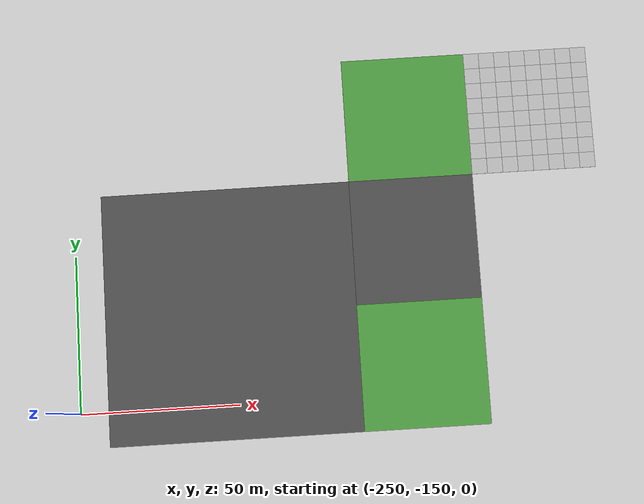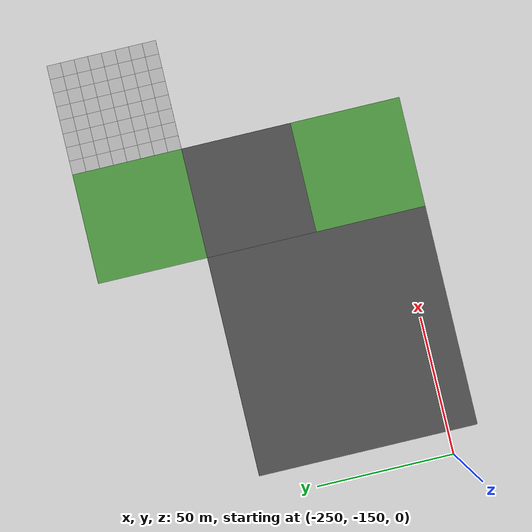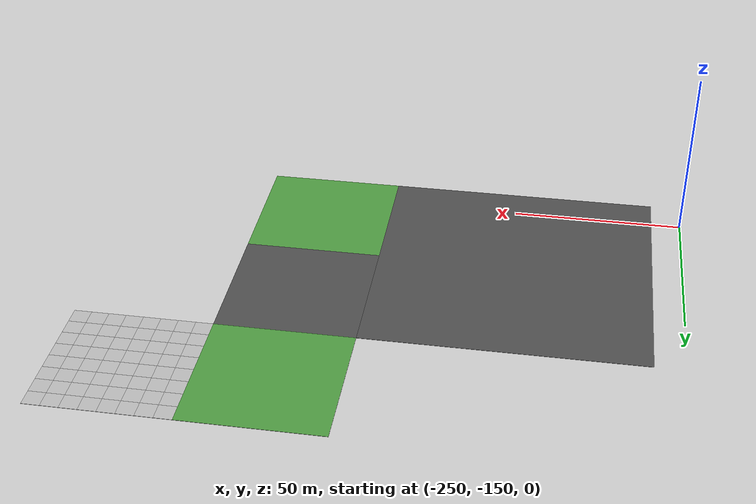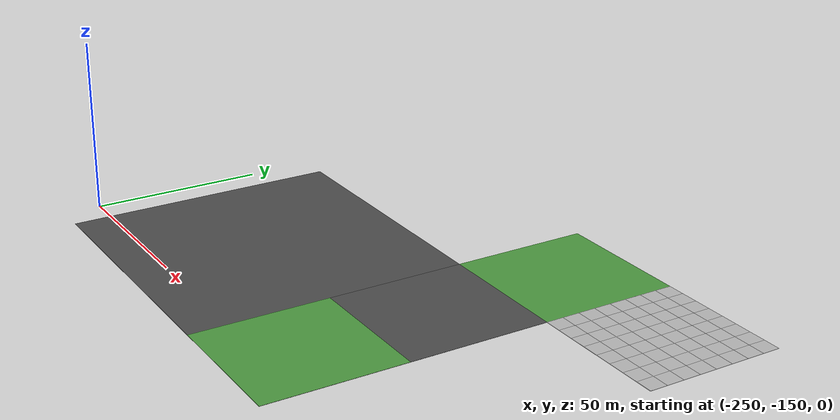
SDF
<sdf version="1.7">
 <world name="default">
  <model name="asphalt_plane_40x40_0">
   <pose>-201.419 -120.749 -0.05 0 -0 0</pose>
   <static>1</static>
   <link name="link">
    <collision name="collision"><geometry><box><size>80 80 0.1</size></box></geometry></collision>
    <visual name="visual">
     <cast_shadows>0</cast_shadows>
     <geometry><box><size>80 80 0.1</size></box></geometry>
     <material>
      <script>
       <uri>model://asphalt_plane_40x40/materials/scripts</uri>
       <uri>model://asphalt_plane_40x40/materials/textures</uri>
       <name>vrc/asphalt</name>
      </script>
     </material>
    </visual>
   </link>
  </model>
  <model name="asphalt_plane_40x40_1">
   <pose>-141.422 -100.751 -0.05 0 -0 0</pose>
   <static>1</static>
   <link name="link">
    <collision name="collision"><geometry><box><size>40 40 0.1</size></box></geometry></collision>
    <visual name="visual">
     <cast_shadows>0</cast_shadows>
     <geometry><box><size>40 40 0.1</size></box></geometry>
     <material>
      <script>
       <uri>model://asphalt_plane_40x40/materials/scripts</uri>
       <uri>model://asphalt_plane_40x40/materials/textures</uri>
       <name>vrc/asphalt</name>
      </script>
     </material>
    </visual>
   </link>
  </model>
  <model name="grass_plane_40x40_8">
   <pose>-141.42 -140.749 -0.05 0 -0 0</pose>
   <static>1</static>
   <link name="link">
    <collision name="collision"><geometry><box><size>40 40 0.1</size></box></geometry></collision>
    <visual name="grass">
     <cast_shadows>0</cast_shadows>
     <geometry><box><size>40 40 0.1</size></box></geometry>
     <material>
      <script><uri>file://media/materials/scripts/gazebo.material</uri><name>Gazebo/Grass</name></script>
     </material>
    </visual>
   </link>
  </model>
  <model name="grass_plane_40x40_12">
   <pose>-141.422 -60.7516 -0.05 0 -0 0</pose>
   <static>1</static>
   <link name="link">
    <collision name="collision"><geometry><box><size>40 40 0.1</size></box></geometry></collision>
    <visual name="grass">
     <cast_shadows>0</cast_shadows>
     <geometry><box><size>40 40 0.1</size></box></geometry>
     <material>
      <script><uri>file://media/materials/scripts/gazebo.material</uri><name>Gazebo/Grass</name></script>
     </material>
    </visual>
   </link>
  </model>
  <model name="mud_plane_40x40_7">
   <model name="mud_plane_20x20">
    <model name="mud_plane">
     <static>1</static>
     <link name="link">
      <collision name="collision"><geometry><box><size>10 10 0.1</size></box></geometry></collision>
      <visual name="visual_1">
       <pose>-2.5 2.5 -0.05 0 -0 0</pose>
       <cast_shadows>0</cast_shadows>
       <geometry><box><size>5 5 0.1</size></box></geometry>
       <material>
        <script>
         <uri>model://mud_plane/materials/scripts</uri>
         <uri>model://mud_plane/materials/textures</uri>
         <name>vrc/mud</name>
        </script>
       </material>
      </visual>
      <visual name="visual_2">
       <pose>2.5 2.5 -0.05 0 -0 0</pose>
       <cast_shadows>0</cast_shadows>
       <geometry><box><size>5 5 0.1</size></box></geometry>
       <material>
        <script>
         <uri>model://mud_plane/materials/scripts</uri>
         <uri>model://mud_plane/materials/textures</uri>
         <name>vrc/mud</name>
        </script>
       </material>
      </visual>
      <visual name="visual_3">
       <pose>2.5 -2.5 -0.05 0 -0 0</pose>
       <cast_shadows>0</cast_shadows>
       <geometry><box><size>5 5 0.1</size></box></geometry>
       <material>
        <script>
         <uri>model://mud_plane/materials/scripts</uri>
         <uri>model://mud_plane/materials/textures</uri>
         <name>vrc/mud</name>
        </script>
       </material>
      </visual>
      <visual name="visual_4">
       <pose>-2.5 -2.5 -0.05 0 -0 0</pose>
       <cast_shadows>0</cast_shadows>
       <geometry><box><size>5 5 0.1</size></box></geometry>
       <material>
        <script>
         <uri>model://mud_plane/materials/scripts</uri>
         <uri>model://mud_plane/materials/textures</uri>
         <name>vrc/mud</name>
        </script>
       </material>
      </visual>
     </link>
     <pose>-4.99986 -4.99991 0 0 -0 0</pose>
    </model>
    <model name="mud_plane_0">
     <static>1</static>
     <link name="link">
      <collision name="collision"><geometry><box><size>10 10 0.1</size></box></geometry></collision>
      <visual name="visual_1">
       <pose>-2.5 2.5 -0.05 0 -0 0</pose>
       <cast_shadows>0</cast_shadows>
       <geometry><box><size>5 5 0.1</size></box></geometry>
       <material>
        <script>
         <uri>model://mud_plane/materials/scripts</uri>
         <uri>model://mud_plane/materials/textures</uri>
         <name>vrc/mud</name>
        </script>
       </material>
      </visual>
      <visual name="visual_2">
       <pose>2.5 2.5 -0.05 0 -0 0</pose>
       <cast_shadows>0</cast_shadows>
       <geometry><box><size>5 5 0.1</size></box></geometry>
       <material>
        <script>
         <uri>model://mud_plane/materials/scripts</uri>
         <uri>model://mud_plane/materials/textures</uri>
         <name>vrc/mud</name>
        </script>
       </material>
      </visual>
      <visual name="visual_3">
       <pose>2.5 -2.5 -0.05 0 -0 0</pose>
       <cast_shadows>0</cast_shadows>
       <geometry><box><size>5 5 0.1</size></box></geometry>
       <material>
        <script>
         <uri>model://mud_plane/materials/scripts</uri>
         <uri>model://mud_plane/materials/textures</uri>
         <name>vrc/mud</name>
        </script>
       </material>
      </visual>
      <visual name="visual_4">
       <pose>-2.5 -2.5 -0.05 0 -0 0</pose>
       <cast_shadows>0</cast_shadows>
       <geometry><box><size>5 5 0.1</size></box></geometry>
       <material>
        <script>
         <uri>model://mud_plane/materials/scripts</uri>
         <uri>model://mud_plane/materials/textures</uri>
         <name>vrc/mud</name>
        </script>
       </material>
      </visual>
     </link>
     <pose>-4.99946 4.99954 0 0 -0 0</pose>
    </model>
    <model name="mud_plane_1">
     <static>1</static>
     <link name="link">
      <collision name="collision"><geometry><box><size>10 10 0.1</size></box></geometry></collision>
      <visual name="visual_1">
       <pose>-2.5 2.5 -0.05 0 -0 0</pose>
       <cast_shadows>0</cast_shadows>
       <geometry><box><size>5 5 0.1</size></box></geometry>
       <material>
        <script>
         <uri>model://mud_plane/materials/scripts</uri>
         <uri>model://mud_plane/materials/textures</uri>
         <name>vrc/mud</name>
        </script>
       </material>
      </visual>
      <visual name="visual_2">
       <pose>2.5 2.5 -0.05 0 -0 0</pose>
       <cast_shadows>0</cast_shadows>
       <geometry><box><size>5 5 0.1</size></box></geometry>
       <material>
        <script>
         <uri>model://mud_plane/materials/scripts</uri>
         <uri>model://mud_plane/materials/textures</uri>
         <name>vrc/mud</name>
        </script>
       </material>
      </visual>
      <visual name="visual_3">
       <pose>2.5 -2.5 -0.05 0 -0 0</pose>
       <cast_shadows>0</cast_shadows>
       <geometry><box><size>5 5 0.1</size></box></geometry>
       <material>
        <script>
         <uri>model://mud_plane/materials/scripts</uri>
         <uri>model://mud_plane/materials/textures</uri>
         <name>vrc/mud</name>
        </script>
       </material>
      </visual>
      <visual name="visual_4">
       <pose>-2.5 -2.5 -0.05 0 -0 0</pose>
       <cast_shadows>0</cast_shadows>
       <geometry><box><size>5 5 0.1</size></box></geometry>
       <material>
        <script>
         <uri>model://mud_plane/materials/scripts</uri>
         <uri>model://mud_plane/materials/textures</uri>
         <name>vrc/mud</name>
        </script>
       </material>
      </visual>
     </link>
     <pose>4.99964 -4.99949 0 0 -0 0</pose>
    </model>
    <model name="mud_plane_2">
     <static>1</static>
     <link name="link">
      <collision name="collision"><geometry><box><size>10 10 0.1</size></box></geometry></collision>
      <visual name="visual_1">
       <pose>-2.5 2.5 -0.05 0 -0 0</pose>
       <cast_shadows>0</cast_shadows>
       <geometry><box><size>5 5 0.1</size></box></geometry>
       <material>
        <script>
         <uri>model://mud_plane/materials/scripts</uri>
         <uri>model://mud_plane/materials/textures</uri>
         <name>vrc/mud</name>
        </script>
       </material>
      </visual>
      <visual name="visual_2">
       <pose>2.5 2.5 -0.05 0 -0 0</pose>
       <cast_shadows>0</cast_shadows>
       <geometry><box><size>5 5 0.1</size></box></geometry>
       <material>
        <script>
         <uri>model://mud_plane/materials/scripts</uri>
         <uri>model://mud_plane/materials/textures</uri>
         <name>vrc/mud</name>
        </script>
       </material>
      </visual>
      <visual name="visual_3">
       <pose>2.5 -2.5 -0.05 0 -0 0</pose>
       <cast_shadows>0</cast_shadows>
       <geometry><box><size>5 5 0.1</size></box></geometry>
       <material>
        <script>
         <uri>model://mud_plane/materials/scripts</uri>
         <uri>model://mud_plane/materials/textures</uri>
         <name>vrc/mud</name>
        </script>
       </material>
      </visual>
      <visual name="visual_4">
       <pose>-2.5 -2.5 -0.05 0 -0 0</pose>
       <cast_shadows>0</cast_shadows>
       <geometry><box><size>5 5 0.1</size></box></geometry>
       <material>
        <script>
         <uri>model://mud_plane/materials/scripts</uri>
         <uri>model://mud_plane/materials/textures</uri>
         <name>vrc/mud</name>
        </script>
       </material>
      </visual>
     </link>
     <pose>4.99967 4.99986 0 0 -0 0</pose>
    </model>
    <static>0</static>
    <pose>-9.99895 9.99843 0 0 -0 0</pose>
   </model>
   <model name="mud_plane_20x20_0">
    <model name="mud_plane">
     <static>1</static>
     <link name="link">
      <collision name="collision"><geometry><box><size>10 10 0.1</size></box></geometry></collision>
      <visual name="visual_1">
       <pose>-2.5 2.5 -0.05 0 -0 0</pose>
       <cast_shadows>0</cast_shadows>
       <geometry><box><size>5 5 0.1</size></box></geometry>
       <material>
        <script>
         <uri>model://mud_plane/materials/scripts</uri>
         <uri>model://mud_plane/materials/textures</uri>
         <name>vrc/mud</name>
        </script>
       </material>
      </visual>
      <visual name="visual_2">
       <pose>2.5 2.5 -0.05 0 -0 0</pose>
       <cast_shadows>0</cast_shadows>
       <geometry><box><size>5 5 0.1</size></box></geometry>
       <material>
        <script>
         <uri>model://mud_plane/materials/scripts</uri>
         <uri>model://mud_plane/materials/textures</uri>
         <name>vrc/mud</name>
        </script>
       </material>
      </visual>
      <visual name="visual_3">
       <pose>2.5 -2.5 -0.05 0 -0 0</pose>
       <cast_shadows>0</cast_shadows>
       <geometry><box><size>5 5 0.1</size></box></geometry>
       <material>
        <script>
         <uri>model://mud_plane/materials/scripts</uri>
         <uri>model://mud_plane/materials/textures</uri>
         <name>vrc/mud</name>
        </script>
       </material>
      </visual>
      <visual name="visual_4">
       <pose>-2.5 -2.5 -0.05 0 -0 0</pose>
       <cast_shadows>0</cast_shadows>
       <geometry><box><size>5 5 0.1</size></box></geometry>
       <material>
        <script>
         <uri>model://mud_plane/materials/scripts</uri>
         <uri>model://mud_plane/materials/textures</uri>
         <name>vrc/mud</name>
        </script>
       </material>
      </visual>
     </link>
     <pose>-4.99986 -4.99991 0 0 -0 0</pose>
    </model>
    <model name="mud_plane_0">
     <static>1</static>
     <link name="link">
      <collision name="collision"><geometry><box><size>10 10 0.1</size></box></geometry></collision>
      <visual name="visual_1">
       <pose>-2.5 2.5 -0.05 0 -0 0</pose>
       <cast_shadows>0</cast_shadows>
       <geometry><box><size>5 5 0.1</size></box></geometry>
       <material>
        <script>
         <uri>model://mud_plane/materials/scripts</uri>
         <uri>model://mud_plane/materials/textures</uri>
         <name>vrc/mud</name>
        </script>
       </material>
      </visual>
      <visual name="visual_2">
       <pose>2.5 2.5 -0.05 0 -0 0</pose>
       <cast_shadows>0</cast_shadows>
       <geometry><box><size>5 5 0.1</size></box></geometry>
       <material>
        <script>
         <uri>model://mud_plane/materials/scripts</uri>
         <uri>model://mud_plane/materials/textures</uri>
         <name>vrc/mud</name>
        </script>
       </material>
      </visual>
      <visual name="visual_3">
       <pose>2.5 -2.5 -0.05 0 -0 0</pose>
       <cast_shadows>0</cast_shadows>
       <geometry><box><size>5 5 0.1</size></box></geometry>
       <material>
        <script>
         <uri>model://mud_plane/materials/scripts</uri>
         <uri>model://mud_plane/materials/textures</uri>
         <name>vrc/mud</name>
        </script>
       </material>
      </visual>
      <visual name="visual_4">
       <pose>-2.5 -2.5 -0.05 0 -0 0</pose>
       <cast_shadows>0</cast_shadows>
       <geometry><box><size>5 5 0.1</size></box></geometry>
       <material>
        <script>
         <uri>model://mud_plane/materials/scripts</uri>
         <uri>model://mud_plane/materials/textures</uri>
         <name>vrc/mud</name>
        </script>
       </material>
      </visual>
     </link>
     <pose>-4.99946 4.99954 0 0 -0 0</pose>
    </model>
    <model name="mud_plane_1">
     <static>1</static>
     <link name="link">
      <collision name="collision"><geometry><box><size>10 10 0.1</size></box></geometry></collision>
      <visual name="visual_1">
       <pose>-2.5 2.5 -0.05 0 -0 0</pose>
       <cast_shadows>0</cast_shadows>
       <geometry><box><size>5 5 0.1</size></box></geometry>
       <material>
        <script>
         <uri>model://mud_plane/materials/scripts</uri>
         <uri>model://mud_plane/materials/textures</uri>
         <name>vrc/mud</name>
        </script>
       </material>
      </visual>
      <visual name="visual_2">
       <pose>2.5 2.5 -0.05 0 -0 0</pose>
       <cast_shadows>0</cast_shadows>
       <geometry><box><size>5 5 0.1</size></box></geometry>
       <material>
        <script>
         <uri>model://mud_plane/materials/scripts</uri>
         <uri>model://mud_plane/materials/textures</uri>
         <name>vrc/mud</name>
        </script>
       </material>
      </visual>
      <visual name="visual_3">
       <pose>2.5 -2.5 -0.05 0 -0 0</pose>
       <cast_shadows>0</cast_shadows>
       <geometry><box><size>5 5 0.1</size></box></geometry>
       <material>
        <script>
         <uri>model://mud_plane/materials/scripts</uri>
         <uri>model://mud_plane/materials/textures</uri>
         <name>vrc/mud</name>
        </script>
       </material>
      </visual>
      <visual name="visual_4">
       <pose>-2.5 -2.5 -0.05 0 -0 0</pose>
       <cast_shadows>0</cast_shadows>
       <geometry><box><size>5 5 0.1</size></box></geometry>
       <material>
        <script>
         <uri>model://mud_plane/materials/scripts</uri>
         <uri>model://mud_plane/materials/textures</uri>
         <name>vrc/mud</name>
        </script>
       </material>
      </visual>
     </link>
     <pose>4.99964 -4.99949 0 0 -0 0</pose>
    </model>
    <model name="mud_plane_2">
     <static>1</static>
     <link name="link">
      <collision name="collision"><geometry><box><size>10 10 0.1</size></box></geometry></collision>
      <visual name="visual_1">
       <pose>-2.5 2.5 -0.05 0 -0 0</pose>
       <cast_shadows>0</cast_shadows>
       <geometry><box><size>5 5 0.1</size></box></geometry>
       <material>
        <script>
         <uri>model://mud_plane/materials/scripts</uri>
         <uri>model://mud_plane/materials/textures</uri>
         <name>vrc/mud</name>
        </script>
       </material>
      </visual>
      <visual name="visual_2">
       <pose>2.5 2.5 -0.05 0 -0 0</pose>
       <cast_shadows>0</cast_shadows>
       <geometry><box><size>5 5 0.1</size></box></geometry>
       <material>
        <script>
         <uri>model://mud_plane/materials/scripts</uri>
         <uri>model://mud_plane/materials/textures</uri>
         <name>vrc/mud</name>
        </script>
       </material>
      </visual>
      <visual name="visual_3">
       <pose>2.5 -2.5 -0.05 0 -0 0</pose>
       <cast_shadows>0</cast_shadows>
       <geometry><box><size>5 5 0.1</size></box></geometry>
       <material>
        <script>
         <uri>model://mud_plane/materials/scripts</uri>
         <uri>model://mud_plane/materials/textures</uri>
         <name>vrc/mud</name>
        </script>
       </material>
      </visual>
      <visual name="visual_4">
       <pose>-2.5 -2.5 -0.05 0 -0 0</pose>
       <cast_shadows>0</cast_shadows>
       <geometry><box><size>5 5 0.1</size></box></geometry>
       <material>
        <script>
         <uri>model://mud_plane/materials/scripts</uri>
         <uri>model://mud_plane/materials/textures</uri>
         <name>vrc/mud</name>
        </script>
       </material>
      </visual>
     </link>
     <pose>4.99967 4.99986 0 0 -0 0</pose>
    </model>
    <static>0</static>
    <pose>9.99933 9.9997 0 0 -0 0</pose>
   </model>
   <model name="mud_plane_20x20_1">
    <model name="mud_plane">
     <static>1</static>
     <link name="link">
      <collision name="collision"><geometry><box><size>10 10 0.1</size></box></geometry></collision>
      <visual name="visual_1">
       <pose>-2.5 2.5 -0.05 0 -0 0</pose>
       <cast_shadows>0</cast_shadows>
       <geometry><box><size>5 5 0.1</size></box></geometry>
       <material>
        <script>
         <uri>model://mud_plane/materials/scripts</uri>
         <uri>model://mud_plane/materials/textures</uri>
         <name>vrc/mud</name>
        </script>
       </material>
      </visual>
      <visual name="visual_2">
       <pose>2.5 2.5 -0.05 0 -0 0</pose>
       <cast_shadows>0</cast_shadows>
       <geometry><box><size>5 5 0.1</size></box></geometry>
       <material>
        <script>
         <uri>model://mud_plane/materials/scripts</uri>
         <uri>model://mud_plane/materials/textures</uri>
         <name>vrc/mud</name>
        </script>
       </material>
      </visual>
      <visual name="visual_3">
       <pose>2.5 -2.5 -0.05 0 -0 0</pose>
       <cast_shadows>0</cast_shadows>
       <geometry><box><size>5 5 0.1</size></box></geometry>
       <material>
        <script>
         <uri>model://mud_plane/materials/scripts</uri>
         <uri>model://mud_plane/materials/textures</uri>
         <name>vrc/mud</name>
        </script>
       </material>
      </visual>
      <visual name="visual_4">
       <pose>-2.5 -2.5 -0.05 0 -0 0</pose>
       <cast_shadows>0</cast_shadows>
       <geometry><box><size>5 5 0.1</size></box></geometry>
       <material>
        <script>
         <uri>model://mud_plane/materials/scripts</uri>
         <uri>model://mud_plane/materials/textures</uri>
         <name>vrc/mud</name>
        </script>
       </material>
      </visual>
     </link>
     <pose>-4.99986 -4.99991 0 0 -0 0</pose>
    </model>
    <model name="mud_plane_0">
     <static>1</static>
     <link name="link">
      <collision name="collision"><geometry><box><size>10 10 0.1</size></box></geometry></collision>
      <visual name="visual_1">
       <pose>-2.5 2.5 -0.05 0 -0 0</pose>
       <cast_shadows>0</cast_shadows>
       <geometry><box><size>5 5 0.1</size></box></geometry>
       <material>
        <script>
         <uri>model://mud_plane/materials/scripts</uri>
         <uri>model://mud_plane/materials/textures</uri>
         <name>vrc/mud</name>
        </script>
       </material>
      </visual>
      <visual name="visual_2">
       <pose>2.5 2.5 -0.05 0 -0 0</pose>
       <cast_shadows>0</cast_shadows>
       <geometry><box><size>5 5 0.1</size></box></geometry>
       <material>
        <script>
         <uri>model://mud_plane/materials/scripts</uri>
         <uri>model://mud_plane/materials/textures</uri>
         <name>vrc/mud</name>
        </script>
       </material>
      </visual>
      <visual name="visual_3">
       <pose>2.5 -2.5 -0.05 0 -0 0</pose>
       <cast_shadows>0</cast_shadows>
       <geometry><box><size>5 5 0.1</size></box></geometry>
       <material>
        <script>
         <uri>model://mud_plane/materials/scripts</uri>
         <uri>model://mud_plane/materials/textures</uri>
         <name>vrc/mud</name>
        </script>
       </material>
      </visual>
      <visual name="visual_4">
       <pose>-2.5 -2.5 -0.05 0 -0 0</pose>
       <cast_shadows>0</cast_shadows>
       <geometry><box><size>5 5 0.1</size></box></geometry>
       <material>
        <script>
         <uri>model://mud_plane/materials/scripts</uri>
         <uri>model://mud_plane/materials/textures</uri>
         <name>vrc/mud</name>
        </script>
       </material>
      </visual>
     </link>
     <pose>-4.99946 4.99954 0 0 -0 0</pose>
    </model>
    <model name="mud_plane_1">
     <static>1</static>
     <link name="link">
      <collision name="collision"><geometry><box><size>10 10 0.1</size></box></geometry></collision>
      <visual name="visual_1">
       <pose>-2.5 2.5 -0.05 0 -0 0</pose>
       <cast_shadows>0</cast_shadows>
       <geometry><box><size>5 5 0.1</size></box></geometry>
       <material>
        <script>
         <uri>model://mud_plane/materials/scripts</uri>
         <uri>model://mud_plane/materials/textures</uri>
         <name>vrc/mud</name>
        </script>
       </material>
      </visual>
      <visual name="visual_2">
       <pose>2.5 2.5 -0.05 0 -0 0</pose>
       <cast_shadows>0</cast_shadows>
       <geometry><box><size>5 5 0.1</size></box></geometry>
       <material>
        <script>
         <uri>model://mud_plane/materials/scripts</uri>
         <uri>model://mud_plane/materials/textures</uri>
         <name>vrc/mud</name>
        </script>
       </material>
      </visual>
      <visual name="visual_3">
       <pose>2.5 -2.5 -0.05 0 -0 0</pose>
       <cast_shadows>0</cast_shadows>
       <geometry><box><size>5 5 0.1</size></box></geometry>
       <material>
        <script>
         <uri>model://mud_plane/materials/scripts</uri>
         <uri>model://mud_plane/materials/textures</uri>
         <name>vrc/mud</name>
        </script>
       </material>
      </visual>
      <visual name="visual_4">
       <pose>-2.5 -2.5 -0.05 0 -0 0</pose>
       <cast_shadows>0</cast_shadows>
       <geometry><box><size>5 5 0.1</size></box></geometry>
       <material>
        <script>
         <uri>model://mud_plane/materials/scripts</uri>
         <uri>model://mud_plane/materials/textures</uri>
         <name>vrc/mud</name>
        </script>
       </material>
      </visual>
     </link>
     <pose>4.99964 -4.99949 0 0 -0 0</pose>
    </model>
    <model name="mud_plane_2">
     <static>1</static>
     <link name="link">
      <collision name="collision"><geometry><box><size>10 10 0.1</size></box></geometry></collision>
      <visual name="visual_1">
       <pose>-2.5 2.5 -0.05 0 -0 0</pose>
       <cast_shadows>0</cast_shadows>
       <geometry><box><size>5 5 0.1</size></box></geometry>
       <material>
        <script>
         <uri>model://mud_plane/materials/scripts</uri>
         <uri>model://mud_plane/materials/textures</uri>
         <name>vrc/mud</name>
        </script>
       </material>
      </visual>
      <visual name="visual_2">
       <pose>2.5 2.5 -0.05 0 -0 0</pose>
       <cast_shadows>0</cast_shadows>
       <geometry><box><size>5 5 0.1</size></box></geometry>
       <material>
        <script>
         <uri>model://mud_plane/materials/scripts</uri>
         <uri>model://mud_plane/materials/textures</uri>
         <name>vrc/mud</name>
        </script>
       </material>
      </visual>
      <visual name="visual_3">
       <pose>2.5 -2.5 -0.05 0 -0 0</pose>
       <cast_shadows>0</cast_shadows>
       <geometry><box><size>5 5 0.1</size></box></geometry>
       <material>
        <script>
         <uri>model://mud_plane/materials/scripts</uri>
         <uri>model://mud_plane/materials/textures</uri>
         <name>vrc/mud</name>
        </script>
       </material>
      </visual>
      <visual name="visual_4">
       <pose>-2.5 -2.5 -0.05 0 -0 0</pose>
       <cast_shadows>0</cast_shadows>
       <geometry><box><size>5 5 0.1</size></box></geometry>
       <material>
        <script>
         <uri>model://mud_plane/materials/scripts</uri>
         <uri>model://mud_plane/materials/textures</uri>
         <name>vrc/mud</name>
        </script>
       </material>
      </visual>
     </link>
     <pose>4.99967 4.99986 0 0 -0 0</pose>
    </model>
    <static>0</static>
    <pose>9.9993 -9.99877 0 0 -0 0</pose>
   </model>
   <model name="mud_plane_20x20_2">
    <model name="mud_plane">
     <static>1</static>
     <link name="link">
      <collision name="collision"><geometry><box><size>10 10 0.1</size></box></geometry></collision>
      <visual name="visual_1">
       <pose>-2.5 2.5 -0.05 0 -0 0</pose>
       <cast_shadows>0</cast_shadows>
       <geometry><box><size>5 5 0.1</size></box></geometry>
       <material>
        <script>
         <uri>model://mud_plane/materials/scripts</uri>
         <uri>model://mud_plane/materials/textures</uri>
         <name>vrc/mud</name>
        </script>
       </material>
      </visual>
      <visual name="visual_2">
       <pose>2.5 2.5 -0.05 0 -0 0</pose>
       <cast_shadows>0</cast_shadows>
       <geometry><box><size>5 5 0.1</size></box></geometry>
       <material>
        <script>
         <uri>model://mud_plane/materials/scripts</uri>
         <uri>model://mud_plane/materials/textures</uri>
         <name>vrc/mud</name>
        </script>
       </material>
      </visual>
      <visual name="visual_3">
       <pose>2.5 -2.5 -0.05 0 -0 0</pose>
       <cast_shadows>0</cast_shadows>
       <geometry><box><size>5 5 0.1</size></box></geometry>
       <material>
        <script>
         <uri>model://mud_plane/materials/scripts</uri>
         <uri>model://mud_plane/materials/textures</uri>
         <name>vrc/mud</name>
        </script>
       </material>
      </visual>
      <visual name="visual_4">
       <pose>-2.5 -2.5 -0.05 0 -0 0</pose>
       <cast_shadows>0</cast_shadows>
       <geometry><box><size>5 5 0.1</size></box></geometry>
       <material>
        <script>
         <uri>model://mud_plane/materials/scripts</uri>
         <uri>model://mud_plane/materials/textures</uri>
         <name>vrc/mud</name>
        </script>
       </material>
      </visual>
     </link>
     <pose>-4.99986 -4.99991 0 0 -0 0</pose>
    </model>
    <model name="mud_plane_0">
     <static>1</static>
     <link name="link">
      <collision name="collision"><geometry><box><size>10 10 0.1</size></box></geometry></collision>
      <visual name="visual_1">
       <pose>-2.5 2.5 -0.05 0 -0 0</pose>
       <cast_shadows>0</cast_shadows>
       <geometry><box><size>5 5 0.1</size></box></geometry>
       <material>
        <script>
         <uri>model://mud_plane/materials/scripts</uri>
         <uri>model://mud_plane/materials/textures</uri>
         <name>vrc/mud</name>
        </script>
       </material>
      </visual>
      <visual name="visual_2">
       <pose>2.5 2.5 -0.05 0 -0 0</pose>
       <cast_shadows>0</cast_shadows>
       <geometry><box><size>5 5 0.1</size></box></geometry>
       <material>
        <script>
         <uri>model://mud_plane/materials/scripts</uri>
         <uri>model://mud_plane/materials/textures</uri>
         <name>vrc/mud</name>
        </script>
       </material>
      </visual>
      <visual name="visual_3">
       <pose>2.5 -2.5 -0.05 0 -0 0</pose>
       <cast_shadows>0</cast_shadows>
       <geometry><box><size>5 5 0.1</size></box></geometry>
       <material>
        <script>
         <uri>model://mud_plane/materials/scripts</uri>
         <uri>model://mud_plane/materials/textures</uri>
         <name>vrc/mud</name>
        </script>
       </material>
      </visual>
      <visual name="visual_4">
       <pose>-2.5 -2.5 -0.05 0 -0 0</pose>
       <cast_shadows>0</cast_shadows>
       <geometry><box><size>5 5 0.1</size></box></geometry>
       <material>
        <script>
         <uri>model://mud_plane/materials/scripts</uri>
         <uri>model://mud_plane/materials/textures</uri>
         <name>vrc/mud</name>
        </script>
       </material>
      </visual>
     </link>
     <pose>-4.99946 4.99954 0 0 -0 0</pose>
    </model>
    <model name="mud_plane_1">
     <static>1</static>
     <link name="link">
      <collision name="collision"><geometry><box><size>10 10 0.1</size></box></geometry></collision>
      <visual name="visual_1">
       <pose>-2.5 2.5 -0.05 0 -0 0</pose>
       <cast_shadows>0</cast_shadows>
       <geometry><box><size>5 5 0.1</size></box></geometry>
       <material>
        <script>
         <uri>model://mud_plane/materials/scripts</uri>
         <uri>model://mud_plane/materials/textures</uri>
         <name>vrc/mud</name>
        </script>
       </material>
      </visual>
      <visual name="visual_2">
       <pose>2.5 2.5 -0.05 0 -0 0</pose>
       <cast_shadows>0</cast_shadows>
       <geometry><box><size>5 5 0.1</size></box></geometry>
       <material>
        <script>
         <uri>model://mud_plane/materials/scripts</uri>
         <uri>model://mud_plane/materials/textures</uri>
         <name>vrc/mud</name>
        </script>
       </material>
      </visual>
      <visual name="visual_3">
       <pose>2.5 -2.5 -0.05 0 -0 0</pose>
       <cast_shadows>0</cast_shadows>
       <geometry><box><size>5 5 0.1</size></box></geometry>
       <material>
        <script>
         <uri>model://mud_plane/materials/scripts</uri>
         <uri>model://mud_plane/materials/textures</uri>
         <name>vrc/mud</name>
        </script>
       </material>
      </visual>
      <visual name="visual_4">
       <pose>-2.5 -2.5 -0.05 0 -0 0</pose>
       <cast_shadows>0</cast_shadows>
       <geometry><box><size>5 5 0.1</size></box></geometry>
       <material>
        <script>
         <uri>model://mud_plane/materials/scripts</uri>
         <uri>model://mud_plane/materials/textures</uri>
         <name>vrc/mud</name>
        </script>
       </material>
      </visual>
     </link>
     <pose>4.99964 -4.99949 0 0 -0 0</pose>
    </model>
    <model name="mud_plane_2">
     <static>1</static>
     <link name="link">
      <collision name="collision"><geometry><box><size>10 10 0.1</size></box></geometry></collision>
      <visual name="visual_1">
       <pose>-2.5 2.5 -0.05 0 -0 0</pose>
       <cast_shadows>0</cast_shadows>
       <geometry><box><size>5 5 0.1</size></box></geometry>
       <material>
        <script>
         <uri>model://mud_plane/materials/scripts</uri>
         <uri>model://mud_plane/materials/textures</uri>
         <name>vrc/mud</name>
        </script>
       </material>
      </visual>
      <visual name="visual_2">
       <pose>2.5 2.5 -0.05 0 -0 0</pose>
       <cast_shadows>0</cast_shadows>
       <geometry><box><size>5 5 0.1</size></box></geometry>
       <material>
        <script>
         <uri>model://mud_plane/materials/scripts</uri>
         <uri>model://mud_plane/materials/textures</uri>
         <name>vrc/mud</name>
        </script>
       </material>
      </visual>
      <visual name="visual_3">
       <pose>2.5 -2.5 -0.05 0 -0 0</pose>
       <cast_shadows>0</cast_shadows>
       <geometry><box><size>5 5 0.1</size></box></geometry>
       <material>
        <script>
         <uri>model://mud_plane/materials/scripts</uri>
         <uri>model://mud_plane/materials/textures</uri>
         <name>vrc/mud</name>
        </script>
       </material>
      </visual>
      <visual name="visual_4">
       <pose>-2.5 -2.5 -0.05 0 -0 0</pose>
       <cast_shadows>0</cast_shadows>
       <geometry><box><size>5 5 0.1</size></box></geometry>
       <material>
        <script>
         <uri>model://mud_plane/materials/scripts</uri>
         <uri>model://mud_plane/materials/textures</uri>
         <name>vrc/mud</name>
        </script>
       </material>
      </visual>
     </link>
     <pose>4.99967 4.99986 0 0 -0 0</pose>
    </model>
    <static>0</static>
    <pose>-9.99969 -9.99935 0 0 -0 0</pose>
   </model>
   <static>0</static>
   <pose>-101.423 -60.7505 0 0 -0 0</pose>
  </model>
 </world>
</sdf>
